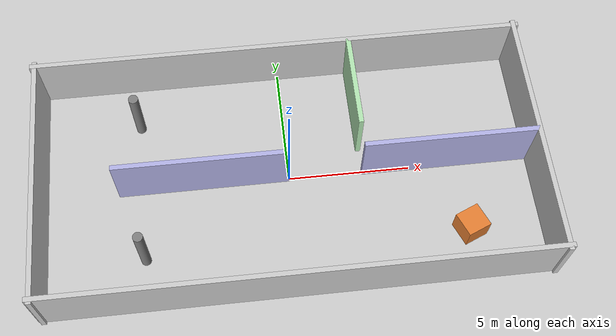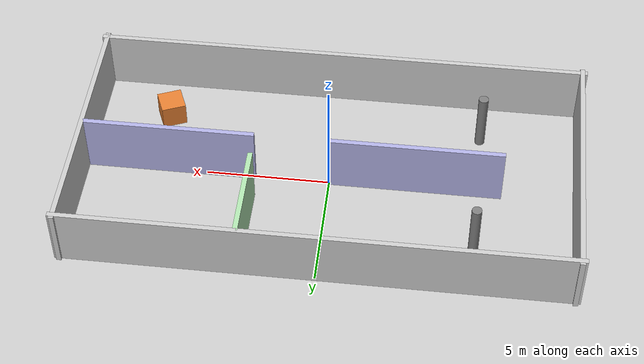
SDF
<?xml version="1.0" ?>
<!-- Simple indoor navigation world for CMU autonomy stack testing.
     Layout: a 20x10m room with internal walls forming corridors. -->
<sdf version="1.6">
  <world name="indoor_nav">

    <include>
      <uri>model://ground_plane</uri>
    </include>
    <include>
      <uri>model://sun</uri>
    </include>

    <physics name="default_physics" default="true" type="ode">
      <max_step_size>0.001</max_step_size>
      <real_time_factor>1.0</real_time_factor>
      <real_time_update_rate>1000</real_time_update_rate>
      <ode>
        <solver>
          <type>quick</type>
          <iters>200</iters>
          <sor>1.3</sor>
        </solver>
        <constraints>
          <cfm>0</cfm>
          <erp>0.2</erp>
          <contact_max_correcting_vel>10</contact_max_correcting_vel>
          <contact_surface_layer>0.001</contact_surface_layer>
        </constraints>
      </ode>
    </physics>

    <!-- Outer walls (20 x 10 m room, 2.5 m tall, 0.2 m thick) -->

    <!-- South wall -->
    <model name="wall_south">
      <static>true</static>
      <pose>0 -5 1.25 0 0 0</pose>
      <link name="link">
        <collision name="collision">
          <geometry><box><size>20.4 0.2 2.5</size></box></geometry>
        </collision>
        <visual name="visual">
          <geometry><box><size>20.4 0.2 2.5</size></box></geometry>
          <material><ambient>0.8 0.8 0.8 1</ambient></material>
        </visual>
      </link>
    </model>

    <!-- North wall -->
    <model name="wall_north">
      <static>true</static>
      <pose>0 5 1.25 0 0 0</pose>
      <link name="link">
        <collision name="collision">
          <geometry><box><size>20.4 0.2 2.5</size></box></geometry>
        </collision>
        <visual name="visual">
          <geometry><box><size>20.4 0.2 2.5</size></box></geometry>
          <material><ambient>0.8 0.8 0.8 1</ambient></material>
        </visual>
      </link>
    </model>

    <!-- West wall -->
    <model name="wall_west">
      <static>true</static>
      <pose>-10 0 1.25 0 0 0</pose>
      <link name="link">
        <collision name="collision">
          <geometry><box><size>0.2 10.4 2.5</size></box></geometry>
        </collision>
        <visual name="visual">
          <geometry><box><size>0.2 10.4 2.5</size></box></geometry>
          <material><ambient>0.8 0.8 0.8 1</ambient></material>
        </visual>
      </link>
    </model>

    <!-- East wall -->
    <model name="wall_east">
      <static>true</static>
      <pose>10 0 1.25 0 0 0</pose>
      <link name="link">
        <collision name="collision">
          <geometry><box><size>0.2 10.4 2.5</size></box></geometry>
        </collision>
        <visual name="visual">
          <geometry><box><size>0.2 10.4 2.5</size></box></geometry>
          <material><ambient>0.8 0.8 0.8 1</ambient></material>
        </visual>
      </link>
    </model>

    <!-- Internal wall 1: horizontal divider (leaves 2 m gap in the middle as doorway) -->
    <model name="int_wall1_left">
      <static>true</static>
      <pose>-3.5 0 1.25 0 0 0</pose>
      <link name="link">
        <collision name="collision">
          <geometry><box><size>7.0 0.2 2.5</size></box></geometry>
        </collision>
        <visual name="visual">
          <geometry><box><size>7.0 0.2 2.5</size></box></geometry>
          <material><ambient>0.7 0.7 0.9 1</ambient></material>
        </visual>
      </link>
    </model>

    <model name="int_wall1_right">
      <static>true</static>
      <pose>6.5 0 1.25 0 0 0</pose>
      <link name="link">
        <collision name="collision">
          <geometry><box><size>7.0 0.2 2.5</size></box></geometry>
        </collision>
        <visual name="visual">
          <geometry><box><size>7.0 0.2 2.5</size></box></geometry>
          <material><ambient>0.7 0.7 0.9 1</ambient></material>
        </visual>
      </link>
    </model>

    <!-- Internal wall 2: vertical divider in right room (leaves doorway on south) -->
    <model name="int_wall2_top">
      <static>true</static>
      <pose>3 3.0 1.25 0 0 1.5708</pose>
      <link name="link">
        <collision name="collision">
          <geometry><box><size>4.0 0.2 2.5</size></box></geometry>
        </collision>
        <visual name="visual">
          <geometry><box><size>4.0 0.2 2.5</size></box></geometry>
          <material><ambient>0.7 0.9 0.7 1</ambient></material>
        </visual>
      </link>
    </model>

    <!-- A few pillars / obstacles -->
    <model name="pillar1">
      <static>true</static>
      <pose>-6 -3 1.25 0 0 0</pose>
      <link name="link">
        <collision name="collision">
          <geometry><cylinder><radius>0.2</radius><length>2.5</length></cylinder></geometry>
        </collision>
        <visual name="visual">
          <geometry><cylinder><radius>0.2</radius><length>2.5</length></cylinder></geometry>
          <material><ambient>0.5 0.5 0.5 1</ambient></material>
        </visual>
      </link>
    </model>

    <model name="pillar2">
      <static>true</static>
      <pose>-6 3 1.25 0 0 0</pose>
      <link name="link">
        <collision name="collision">
          <geometry><cylinder><radius>0.2</radius><length>2.5</length></cylinder></geometry>
        </collision>
        <visual name="visual">
          <geometry><cylinder><radius>0.2</radius><length>2.5</length></cylinder></geometry>
          <material><ambient>0.5 0.5 0.5 1</ambient></material>
        </visual>
      </link>
    </model>

    <!-- Box obstacle for navigation around -->
    <model name="box_obstacle">
      <static>true</static>
      <pose>7 -3 0.5 0 0 0.4</pose>
      <link name="link">
        <collision name="collision">
          <geometry><box><size>1.0 1.0 1.0</size></box></geometry>
        </collision>
        <visual name="visual">
          <geometry><box><size>1.0 1.0 1.0</size></box></geometry>
          <material><ambient>0.9 0.5 0.2 1</ambient></material>
        </visual>
      </link>
    </model>

  </world>
</sdf>
